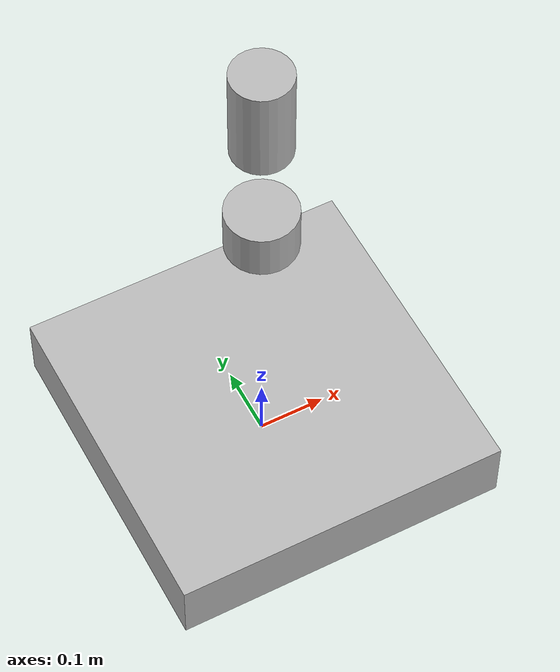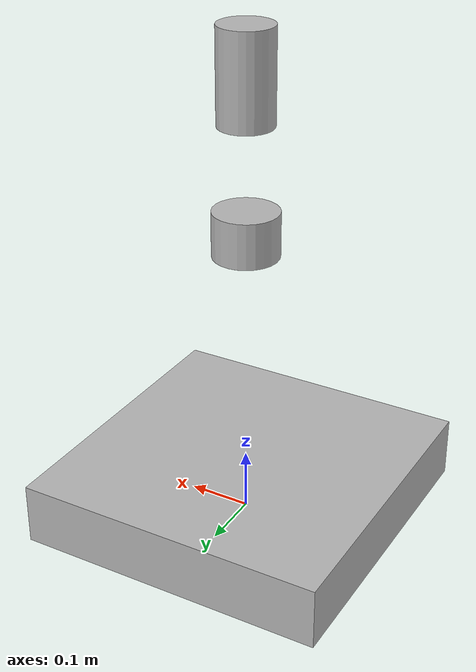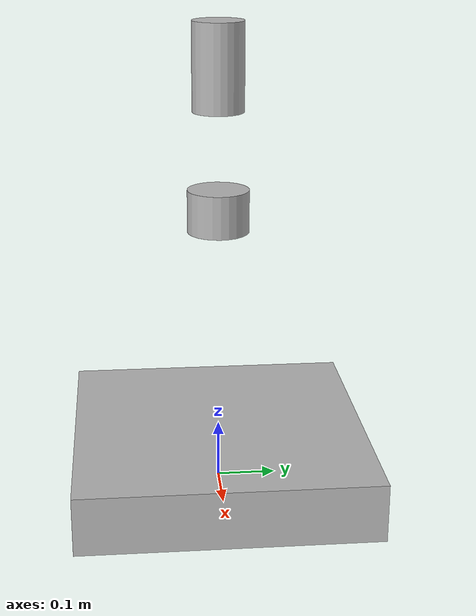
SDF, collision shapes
<sdf version='1.6'>
  <model name='example'>
    <link name='base_footprint'>
      <pose frame=''>0 0 0 0 -0 0</pose>
      <inertial>
        <pose frame=''>0 0 0.070466 0 -0 0</pose>
        <mass>10.4</mass>
        <inertia>
          <ixx>3.51452</ixx>
          <ixy>0</ixy>
          <ixz>0</ixz>
          <iyy>3.51452</iyy>
          <iyz>0</iyz>
          <izz>3.4</izz>
        </inertia>
      </inertial>
      <collision name='base_footprint_fixed_joint_lump__base_link_collision'>
        <pose frame=''>0 0 0.05 0 -0 0</pose>
        <geometry>
          <box>
            <size>0.5 0.5 0.1</size>
          </box>
        </geometry>
      </collision>
      <collision name='base_footprint_fixed_joint_lump__velodyne2_base_link_collision_1'>
        <pose frame=''>0 0 0.72212 0 -0 0</pose>
        <geometry>
          <cylinder>
            <length>0.14424</length>
            <radius>0.04267</radius>
          </cylinder>
        </geometry>
      </collision>
      <collision name='base_footprint_fixed_joint_lump__velodyne_base_link_collision_2'>
        <pose frame=''>0 0 0.48585 0 -0 0</pose>
        <geometry>
          <cylinder>
            <length>0.0717</length>
            <radius>0.0516</radius>
          </cylinder>
        </geometry>
      </collision>
      <visual name='base_footprint_fixed_joint_lump__base_link_visual'>
        <pose frame=''>0 0 0.05 0 -0 0</pose>
        <geometry>
          <box>
            <size>0.5 0.5 0.1</size>
          </box>
        </geometry>
      </visual>
      <visual name='base_footprint_fixed_joint_lump__velodyne2_base_link_visual_1'>
        <pose frame=''>0 0 0.65 0 -0 0</pose>
        <geometry>
          <mesh>
            <scale>1 1 1</scale>
            <uri>model://velodyne_description/meshes/HDL32E_base.dae</uri>
          </mesh>
        </geometry>
      </visual>
      <visual name='base_footprint_fixed_joint_lump__velodyne2_visual_2'>
        <pose frame=''>0 0 0.65 0 -0 0</pose>
        <geometry>
          <mesh>
            <scale>1 1 1</scale>
            <uri>model://velodyne_description/meshes/HDL32E_scan.dae</uri>
          </mesh>
        </geometry>
        <material>
          <script>
            <uri>__default__</uri>
            <name>__default__</name>
          </script>
        </material>
      </visual>
      <visual name='base_footprint_fixed_joint_lump__velodyne_base_link_visual_3'>
        <pose frame=''>0 0 0.45 0 -0 0</pose>
        <geometry>
          <mesh>
            <scale>1 1 1</scale>
            <uri>model://velodyne_description/meshes/VLP16_base_1.dae</uri>
          </mesh>
        </geometry>
      </visual>
      <visual name='base_footprint_fixed_joint_lump__velodyne_base_link_visual_4'>
        <pose frame=''>0 0 0.45 0 -0 0</pose>
        <geometry>
          <mesh>
            <scale>1 1 1</scale>
            <uri>model://velodyne_description/meshes/VLP16_base_2.dae</uri>
          </mesh>
        </geometry>
      </visual>
      <visual name='base_footprint_fixed_joint_lump__velodyne_visual_5'>
        <pose frame=''>0 0 0.45 0 -0 0</pose>
        <geometry>
          <mesh>
            <scale>1 1 1</scale>
            <uri>model://velodyne_description/meshes/VLP16_scan.dae</uri>
          </mesh>
        </geometry>
        <material>
          <script>
            <uri>__default__</uri>
            <name>__default__</name>
          </script>
        </material>
      </visual>
      <velocity_decay/>
      <sensor name='velodyne2-HDL32E' type='ray'>
        <visualize>0</visualize>
        <update_rate>10</update_rate>
        <ray>
          <scan>
            <horizontal>
              <samples>2187</samples>
              <resolution>1</resolution>
              <min_angle>-3.14159</min_angle>
              <max_angle>3.14159</max_angle>
            </horizontal>
            <vertical>
              <samples>32</samples>
              <resolution>1</resolution>
              <min_angle>-0.535292</min_angle>
              <max_angle>0.186227</max_angle>
            </vertical>
          </scan>
          <range>
            <min>0.055</min>
            <max>140</max>
            <resolution>0.001</resolution>
          </range>
          <noise>
            <type>gaussian</type>
            <mean>0</mean>
            <stddev>0</stddev>
          </noise>
        </ray>
        <plugin name='gazebo_ros_laser_controller' filename='libgazebo_ros_velodyne_laser.so'>
          <topicName>/velodyne_points2</topicName>
          <frameName>/velodyne2</frameName>
          <min_range>0.9</min_range>
          <max_range>130.0</max_range>
          <gaussianNoise>0.008</gaussianNoise>
        </plugin>
        <pose frame=''>0 0 0.74081 0 -0 0</pose>
      </sensor>
      <gravity>1</gravity>
      <velocity_decay/>
      <sensor name='velodyne-VLP16' type='ray'>
        <visualize>0</visualize>
        <update_rate>10</update_rate>
        <ray>
          <scan>
            <horizontal>
              <samples>1875</samples>
              <resolution>1</resolution>
              <min_angle>-3.14159</min_angle>
              <max_angle>3.14159</max_angle>
            </horizontal>
            <vertical>
              <samples>16</samples>
              <resolution>1</resolution>
              <min_angle>-0.261799</min_angle>
              <max_angle>0.261799</max_angle>
            </vertical>
          </scan>
          <range>
            <min>0.055</min>
            <max>140</max>
            <resolution>0.001</resolution>
          </range>
          <noise>
            <type>gaussian</type>
            <mean>0</mean>
            <stddev>0</stddev>
          </noise>
        </ray>
        <plugin name='gazebo_ros_laser_controller' filename='libgazebo_ros_velodyne_laser.so'>
          <topicName>/velodyne_points</topicName>
          <frameName>velodyne</frameName>
          <min_range>0.9</min_range>
          <max_range>130.0</max_range>
          <gaussianNoise>0.008</gaussianNoise>
        </plugin>
        <pose frame=''>0 0 0.4877 0 -0 0</pose>
      </sensor>
    </link>
  </model>
</sdf>
